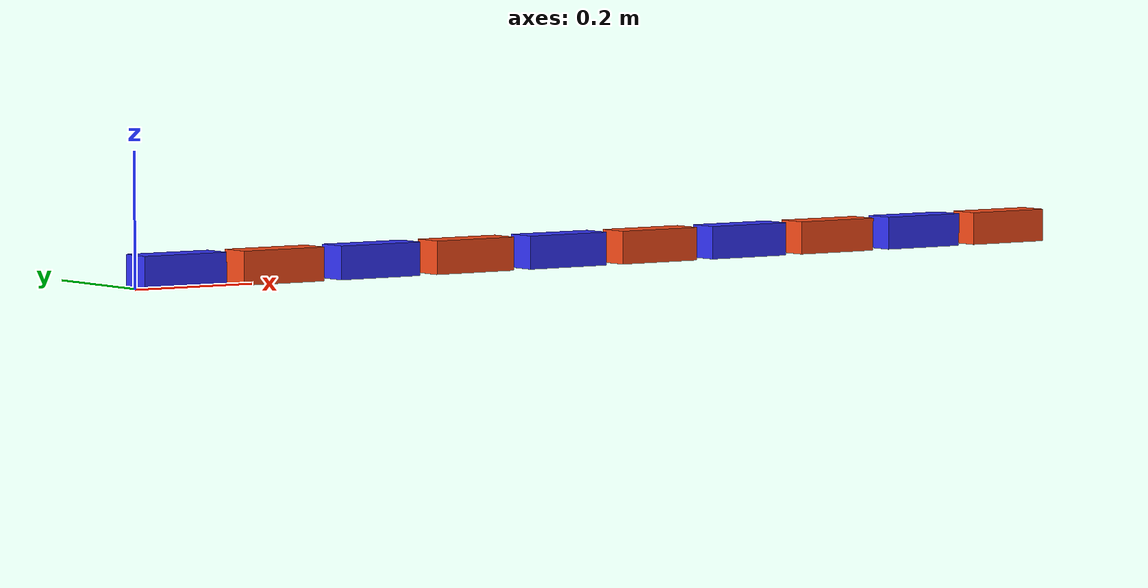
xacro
<?xml version="1.0"?>
<robot xmlns:xacro="http://www.ros.org/wiki/xacro" name="snake_robot">
    <!-- This is an snake robot URDF -->
    <!-- Starting with three links -->
    <!-- xacro will include all the contents of example_include.xacro file -->
    <!-- To use xacro we need to write as below -->

  <!-- The created added, and called the gazebo_config_control.xacro -->
	<!-- The created added, and called the bumper_config.xacro -->

	<xacro:include filename="$(find hari_snake_package)/description/urdf/macro_internal_config.xacro" />
	<xacro:include filename="$(find hari_snake_package)/description/urdf/macro_transmission.xacro" />
	<xacro:include filename="$(find hari_snake_package)/description/urdf/macro.gazebo_config_control.xacro" />

  <xacro:include filename="link_properties_include.xacro" />

  <xacro:include filename="snake_robot_phy_model.xacro" />

  <!-- the following lines instantiates all the info described in the files:
		 macro.gazebo_config_control.xacro, transmissions,  internal_config, macro.bumper_config  by david-->
  <xacro:snake_robot_gazebo_camera/>
  <xacro:snake_robot_gazebo_config_ctr/>
  <xacro:snake_robot_gazebo_transmission />
  <xacro:snake_robot_gazebo_config_coeff />

</robot>

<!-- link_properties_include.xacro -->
<robot xmlns:xacro="http://www.ros.org/wiki/xacro">

   <!-- specify some colours -->
   <material name="orange">
     <color rgba="1 0.3 0.1 1"/>
   </material>
   <material name="black">
     <color rgba="0 0 0 1"/>
   </material>
   <material name="white">
     <color rgba="1 1 1 1"/>
   </material>
   <material name="blue">
     <color rgba="0.2 0.2 1 1"/>
   </material>

   <!-- Specify some standard inertial calculations -->
   <!-- these make use of xacro's mathematical functionality -->

   <xacro:macro name="inertial_box" params="mass x y z *origin">
      <inertial>
      	  <xacro:insert_block name="origin"/>
      	  <mass value="${mass}" />
      	  <inertia ixx = "${(1/12)* mass * (y*y+z*z)}" ixy ="0" ixz ="0"
      	  	   iyy = "${(1/12)* mass * (x*x+z*z)}" iyz ="0"
      	  	   izz = "${(1/12)* mass * (x*x+y*y)}" />
      	  </inertial>
   </xacro:macro>

 </robot>

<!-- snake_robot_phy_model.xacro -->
<robot xmlns:xacro="http://www.ros.org/wiki/xacro">

    <!-- This first link called "world" is empty -->

    <!-- A simple fixed joint from our empty world link, to our base. -->
    <!-- The base origin is offset from the world origin -->

    <xacro:property name="link_length" value = "0.14" />
    <xacro:property name="link_width" value = "0.05" />
    <xacro:property name="link_height" value = "0.05" />
    <xacro:property name="link_mass" value = "1" />
    <xacro:property name="next_link_with_gap" value = "0.10" />  <!-- next link starting point (0.14/2)+0.03 = 0.1 -->
    <xacro:property name="next_link_cg_with_gap" value = "0.17" /> <!-- next link CG from previous link CG (0.14)+0.03 = 0.17 -->

    <!-- Robot is oriented along x-axis -->
    <link name="base_link"/>

    <joint name="joint_0" type="fixed">
      <parent link="base_link"/>
      <child link="link_1"/>
      <origin xyz="0.00 0.0 0.0" rpy= "0 0 0" />
    </joint>

    <link name="link_1">
      <visual>
        <origin xyz="${link_length/2} 0 ${link_height/2}" rpy="0 0 0" /> <!-- CG posistion of link_1 -->
        <geometry>
           <box size="${link_length} ${link_width} ${link_height}"/>
        </geometry>
        <material name="blue"/>
      </visual>
      <collision>
         <origin xyz="${link_length/2} 0 ${link_height/2}" rpy="0 0 0"/>
         <geometry>
           <box size="${link_length} ${link_width} ${link_height}"/>
        </geometry>
      </collision>
      <xacro:inertial_box mass="${link_mass}" x="${link_length}" y="${link_width}" z="${link_height}">
      	    <origin xyz="${link_length/2} 0 ${link_height/2}" rpy="0 0 0" />
      </xacro:inertial_box>
    </link>

    <joint name="joint_1" type="revolute">
      <parent link="link_1"/>
      <child link="link_2"/>
      <origin xyz="${link_length} 0.0 0.0" rpy= "0 0 0" />
      <axis xyz = "0 0 1"/>
      <limit lower="${-pi/3}" upper ="${pi/3}" velocity = "100" effort= "100"/>
    </joint>

    <link name="link_2">
      <visual>
        <origin xyz="${next_link_with_gap} 0 ${link_height/2}" rpy="0 0 0" />
        <geometry>
           <box size="${link_length} ${link_width} ${link_height}"/>
        </geometry>
        <material name="orange"/>
      </visual>
      <collision>
         <origin xyz="${next_link_with_gap} 0 ${link_height/2}" rpy="0 0 0"/>
         <geometry>
           <box size="${link_length} ${link_width} ${link_height}"/>
        </geometry>
      </collision>
      <xacro:inertial_box mass="${link_mass}" x="${link_length}" y="${link_width}" z="${link_height}">
      	    <origin xyz="${next_link_with_gap} 0 0" rpy="0 0 0" />
      </xacro:inertial_box>
    </link>

    <joint name="joint_2" type="revolute">
      <parent link="link_2"/>
      <child link="link_3"/>
      <origin xyz="${next_link_cg_with_gap} 0.0 0.0" rpy= "0 0 0" />
      <axis xyz = "0 0 1"/>
      <limit lower="${-pi/3}" upper ="${pi/3}" velocity = "100" effort= "100"/>
    </joint>

    <link name="link_3">
      <visual>
        <origin xyz="${next_link_with_gap} 0 ${link_height/2}" rpy="0 0 0" />
        <geometry>
           <box size="${link_length} ${link_width} ${link_height}"/>
        </geometry>
        <material name="blue"/>
      </visual>
      <collision>
         <origin xyz="${next_link_with_gap} 0 ${link_height/2}" rpy="0 0 0"/>
         <geometry>
           <box size="${link_length} ${link_width} ${link_height}"/>
        </geometry>
      </collision>
      <xacro:inertial_box mass="${link_mass}" x="${link_length}" y="${link_width}" z="${link_height}">
      	    <origin xyz="${next_link_with_gap} 0 0" rpy="0 0 0" />
      </xacro:inertial_box>
    </link>

    <joint name="joint_3" type="revolute">
      <parent link="link_3"/>
      <child link="link_4"/>
      <origin xyz="${next_link_cg_with_gap} 0.0 0.0" rpy= "0 0 0" />
      <axis xyz = "0 0 1"/>
      <limit lower="${-pi/3}" upper ="${pi/3}" velocity = "100" effort= "100"/>
    </joint>

    <link name="link_4">
      <visual>
        <origin xyz="${next_link_with_gap} 0 ${link_height/2}" rpy="0 0 0" />
        <geometry>
           <box size="${link_length} ${link_width} ${link_height}"/>
        </geometry>
        <material name="orange"/>
      </visual>
      <collision>
         <origin xyz="${next_link_with_gap} 0 ${link_height/2}" rpy="0 0 0"/>
         <geometry>
           <box size="${link_length} ${link_width} ${link_height}"/>
        </geometry>
      </collision>
      <xacro:inertial_box mass="${link_mass}" x="${link_length}" y="${link_width}" z="${link_height}">
      	    <origin xyz="${next_link_with_gap} 0 0" rpy="0 0 0" />
      </xacro:inertial_box>
    </link>

    <joint name="joint_4" type="revolute">
      <parent link="link_4"/>
      <child link="link_5"/>
      <origin xyz="${next_link_cg_with_gap} 0.0 0.0" rpy= "0 0 0" />
      <axis xyz = "0 0 1"/>
      <limit lower="${-pi/3}" upper ="${pi/3}" velocity = "100" effort= "100"/>
    </joint>

    <link name="link_5">
      <visual>
        <origin xyz="${next_link_with_gap} 0 ${link_height/2}" rpy="0 0 0" />
        <geometry>
           <box size="${link_length} ${link_width} ${link_height}"/>
        </geometry>
        <material name="blue"/>
      </visual>
      <collision>
         <origin xyz="${next_link_with_gap} 0 ${link_height/2}" rpy="0 0 0"/>
         <geometry>
           <box size="${link_length} ${link_width} ${link_height}"/>
        </geometry>
      </collision>
      <xacro:inertial_box mass="${link_mass}" x="${link_length}" y="${link_width}" z="${link_height}">
      	    <origin xyz="${next_link_with_gap} 0 0" rpy="0 0 0" />
      </xacro:inertial_box>
    </link>

    <joint name="joint_5" type="revolute">
      <parent link="link_5"/>
      <child link="link_6"/>
      <origin xyz="${next_link_cg_with_gap} 0.0 0.0" rpy= "0 0 0" />
      <axis xyz = "0 0 1"/>
      <limit lower="${-pi/3}" upper ="${pi/3}" velocity = "100" effort= "100"/>
    </joint>

    <link name="link_6">
      <visual>
        <origin xyz="${next_link_with_gap} 0 ${link_height/2}" rpy="0 0 0" />
        <geometry>
           <box size="${link_length} ${link_width} ${link_height}"/>
        </geometry>
        <material name="orange"/>
      </visual>
      <collision>
         <origin xyz="${next_link_with_gap} 0 ${link_height/2}" rpy="0 0 0"/>
         <geometry>
           <box size="${link_length} ${link_width} ${link_height}"/>
        </geometry>
      </collision>
      <xacro:inertial_box mass="${link_mass}" x="${link_length}" y="${link_width}" z="${link_height}">
      	    <origin xyz="${next_link_with_gap} 0 0" rpy="0 0 0" />
      </xacro:inertial_box>
    </link>

    <joint name="joint_6" type="revolute">
      <parent link="link_6"/>
      <child link="link_7"/>
      <origin xyz="${next_link_cg_with_gap} 0.0 0.0" rpy= "0 0 0" />
      <axis xyz = "0 0 1"/>
      <limit lower="${-pi/3}" upper ="${pi/3}" velocity = "100" effort= "100"/>
    </joint>

    <link name="link_7">
      <visual>
        <origin xyz="${next_link_with_gap} 0 ${link_height/2}" rpy="0 0 0" />
        <geometry>
           <box size="${link_length} ${link_width} ${link_height}"/>
        </geometry>
        <material name="blue"/>
      </visual>
      <collision>
         <origin xyz="${next_link_with_gap} 0 ${link_height/2}" rpy="0 0 0"/>
         <geometry>
           <box size="${link_length} ${link_width} ${link_height}"/>
        </geometry>
      </collision>
      <xacro:inertial_box mass="${link_mass}" x="${link_length}" y="${link_width}" z="${link_height}">
      	    <origin xyz="${next_link_with_gap} 0 0" rpy="0 0 0" />
      </xacro:inertial_box>
    </link>

    <joint name="joint_7" type="revolute">
      <parent link="link_7"/>
      <child link="link_8"/>
      <origin xyz="${next_link_cg_with_gap} 0.0 0.0" rpy= "0 0 0" />
      <axis xyz = "0 0 1"/>
      <limit lower="${-pi/3}" upper ="${pi/3}" velocity = "100" effort= "100"/>
    </joint>

    <link name="link_8">
      <visual>
        <origin xyz="${next_link_with_gap} 0 ${link_height/2}" rpy="0 0 0" />
        <geometry>
           <box size="${link_length} ${link_width} ${link_height}"/>
        </geometry>
        <material name="orange"/>
      </visual>
      <collision>
         <origin xyz="${next_link_with_gap} 0 ${link_height/2}" rpy="0 0 0"/>
         <geometry>
           <box size="${link_length} ${link_width} ${link_height}"/>
        </geometry>
      </collision>
      <xacro:inertial_box mass="${link_mass}" x="${link_length}" y="${link_width}" z="${link_height}">
      	    <origin xyz="${next_link_with_gap} 0 0" rpy="0 0 0" />
      </xacro:inertial_box>
    </link>

    <joint name="joint_8" type="revolute">
      <parent link="link_8"/>
      <child link="link_9"/>
      <origin xyz="${next_link_cg_with_gap} 0.0 0.0" rpy= "0 0 0" />
      <axis xyz = "0 0 1"/>
      <limit lower="${-pi/3}" upper ="${pi/3}" velocity = "100" effort= "100"/>
    </joint>

    <link name="link_9">
      <visual>
        <origin xyz="${next_link_with_gap} 0 ${link_height/2}" rpy="0 0 0" />
        <geometry>
           <box size="${link_length} ${link_width} ${link_height}"/>
        </geometry>
        <material name="blue"/>
      </visual>
      <collision>
         <origin xyz="${next_link_with_gap} 0 ${link_height/2}" rpy="0 0 0"/>
         <geometry>
           <box size="${link_length} ${link_width} ${link_height}"/>
        </geometry>
      </collision>
      <xacro:inertial_box mass="${link_mass}" x="${link_length}" y="${link_width}" z="${link_height}">
      	    <origin xyz="${next_link_with_gap} 0 0" rpy="0 0 0" />
      </xacro:inertial_box>
    </link>

    <joint name="joint_9" type="revolute">
      <parent link="link_9"/>
      <child link="link_10"/>
      <origin xyz="${next_link_cg_with_gap} 0.0 0.0" rpy= "0 0 0" />
      <axis xyz = "0 0 1"/>
      <limit lower="${-pi/3}" upper ="${pi/3}" velocity = "100" effort= "100"/>
    </joint>

    <link name="link_10">
      <visual>
        <origin xyz="${next_link_with_gap} 0 ${link_height/2}" rpy="0 0 0" />
        <geometry>
           <box size="${link_length} ${link_width} ${link_height}"/>
        </geometry>
        <material name="orange"/>
      </visual>
      <collision>
         <origin xyz="${next_link_with_gap} 0 ${link_height/2}" rpy="0 0 0"/>
         <geometry>
           <box size="${link_length} ${link_width} ${link_height}"/>
        </geometry>
      </collision>
      <xacro:inertial_box mass="${link_mass}" x="${link_length}" y="${link_width}" z="${link_height}">
      	    <origin xyz="${next_link_with_gap} 0 0" rpy="0 0 0" />
      </xacro:inertial_box>
    </link>

</robot>
